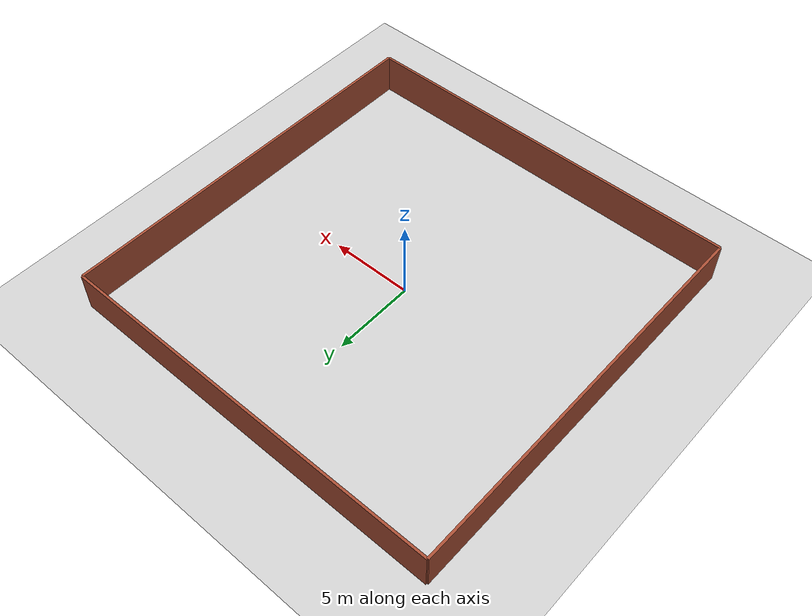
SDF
<?xml version="1.0" ?>
<sdf version="1.6">
  <world name="default">

    <!-- Light source -->
    <include>
      <uri>model://sun</uri>
    </include>

    <!-- Ground plane -->
    <include>
      <uri>model://ground_plane</uri>
    </include>

    <!-- Wall 0 (Top wall) -->
    <model name="wall_0">
      <static>true</static>
      <link name="link">
        <pose>0 12 1.25 0 0 0</pose>
        <collision name="collision">
          <geometry>
            <box>
              <size>24 0.15 2.5</size>
            </box>
          </geometry>
        </collision>
        <visual name="visual">
          <geometry>
            <box>
              <size>24 0.15 2.5</size>
            </box>
          </geometry>
          <material>
            <script>
              <uri>file://media/materials/scripts/gazebo.material</uri>
              <name>Gazebo/Bricks</name>
            </script>
          </material>
        </visual>
      </link>
    </model>

    <!-- Wall 1 (Right wall) -->
    <model name="wall_1">
      <static>true</static>
      <link name="link">
        <pose>12 0 1.25 0 0 1.5708</pose>
        <collision name="collision">
          <geometry>
            <box>
              <size>24 0.15 2.5</size>
            </box>
          </geometry>
        </collision>
        <visual name="visual">
          <geometry>
            <box>
              <size>24 0.15 2.5</size>
            </box>
          </geometry>
          <material>
            <script>
              <uri>file://media/materials/scripts/gazebo.material</uri>
              <name>Gazebo/Bricks</name>
            </script>
          </material>
        </visual>
      </link>
    </model>

    <!-- Wall 2 (Bottom wall) -->
    <model name="wall_2">
      <static>true</static>
      <link name="link">
        <pose>0 -12 1.25 0 0 0</pose>
        <collision name="collision">
          <geometry>
            <box>
              <size>24 0.15 2.5</size>
            </box>
          </geometry>
        </collision>
        <visual name="visual">
          <geometry>
            <box>
              <size>24 0.15 2.5</size>
            </box>
          </geometry>
          <material>
            <script>
              <uri>file://media/materials/scripts/gazebo.material</uri>
              <name>Gazebo/Bricks</name>
            </script>
          </material>
        </visual>
      </link>
    </model>

    <!-- Wall 3 (Left wall) -->
    <model name="wall_3">
      <static>true</static>
      <link name="link">
        <pose>-12 0 1.25 0 0 1.5708</pose>
        <collision name="collision">
          <geometry>
            <box>
              <size>24 0.15 2.5</size>
            </box>
          </geometry>
        </collision>
        <visual name="visual">
          <geometry>
            <box>
              <size>24 0.15 2.5</size>
            </box>
          </geometry>
          <material>
            <script>
              <uri>file://media/materials/scripts/gazebo.material</uri>
              <name>Gazebo/Bricks</name>
            </script>
          </material>
        </visual>
      </link>
    </model>

  </world>
</sdf>
